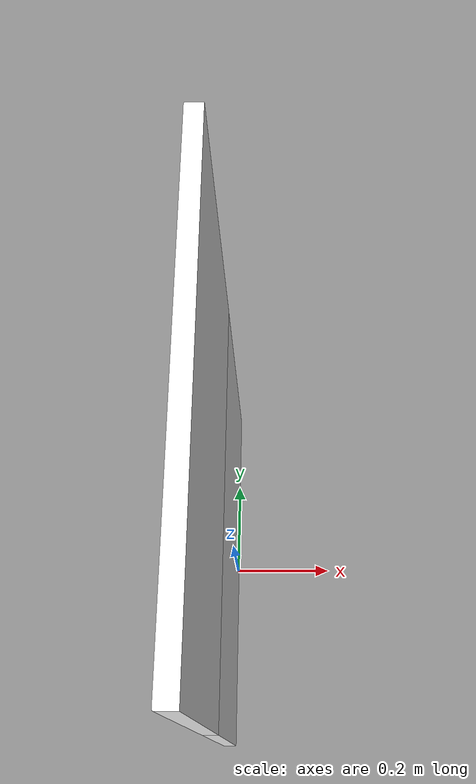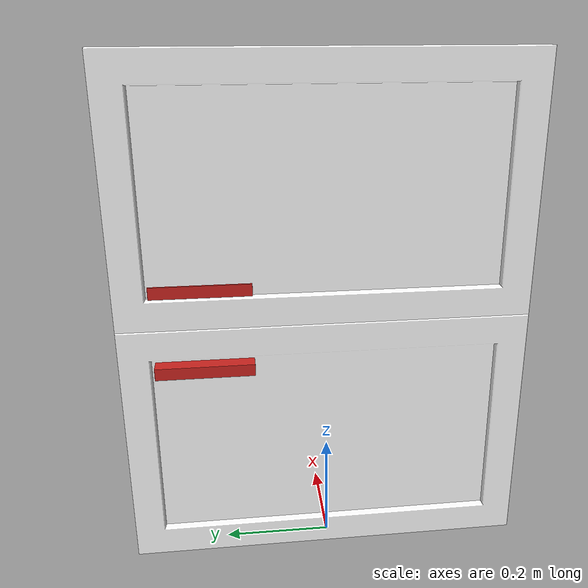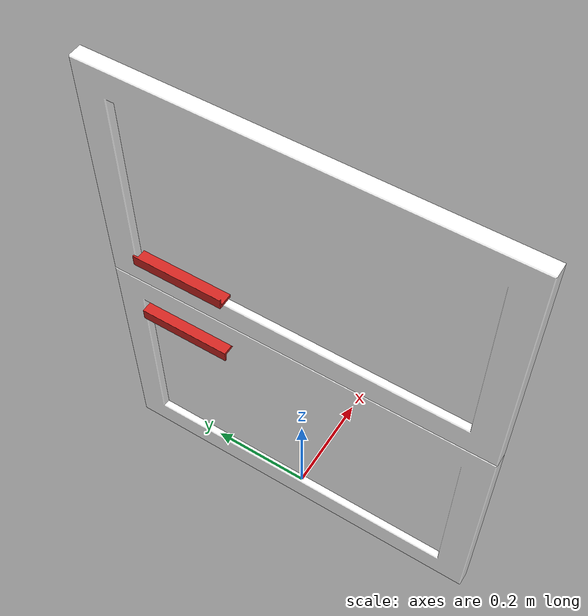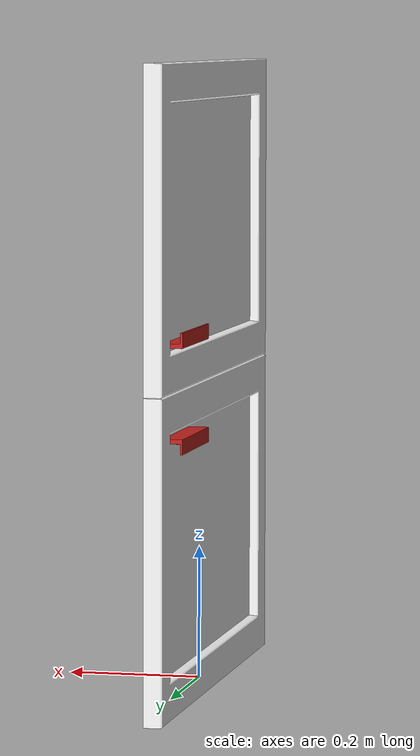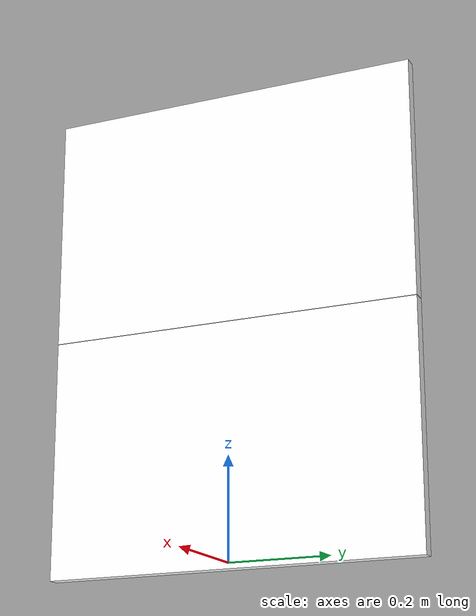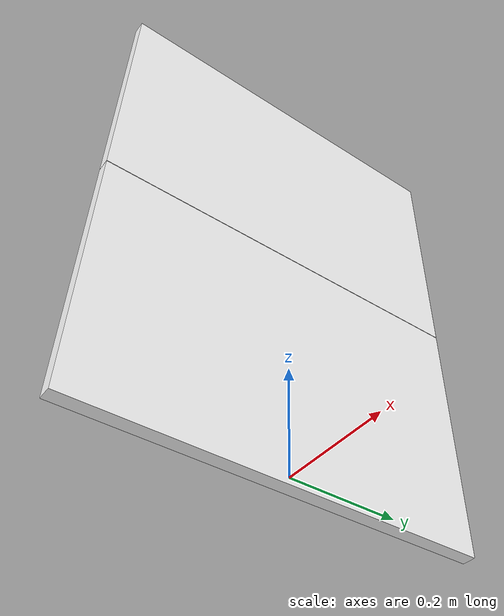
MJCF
<mujoco model="Cabinet_4223545f">
  <compiler autolimits="true" boundmass="0.01" angle="radian"/>
  <default>
    <default class="/">
      <default class="__VISUAL_MJT__">
        <geom contype="0" conaffinity="0" group="0"/>
      </default>
      <default class="__STRUCTURAL_MJT__">
        <geom contype="8" conaffinity="15" group="4" friction="0.90000000000000002 0.90000000000000002 0.001" solref="0.025000000000000001 1" solimp="0.998 0.998 0.001"/>
      </default>
      <default class="__DYNAMIC_MJT__">
        <geom contype="1" conaffinity="15" group="4" friction="0.90000000000000002 0.90000000000000002 0.001" solref="0.025000000000000001 1" solimp="0.998 0.998 0.001"/>
      </default>
    </default>
  </default>
  <asset>
    <material name="material_WhiteWoodClean" class="/" specular="0.5" shininess="0.5" rgba="1 1 1 1"/>
    <mesh name="Cabinet_4223545f_Mesh_01_1b2705d5" class="/" file="Cabinet_4223545f_Mesh_01_1b2705d5/Cabinet_4223545f_Mesh_01_1b2705d5.obj" scale="1 1 1" inertia="legacy"/>
    <texture name="HammeredMetal_AlbedoTransparency_2" type="2d" file="HammeredMetal_AlbedoTransparency.png"/>
    <material name="material_HammeredMetal_AlbedoTransparency_2" class="/" texture="HammeredMetal_AlbedoTransparency_2" specular="0.5" shininess="0.5" rgba="1 0.93407709999999999 0.81617649999999997 1"/>
    <mesh name="Cabinet_4223545f_handle_3_178mm_01_ed0a06c5" class="/" file="Cabinet_4223545f_handle_3_178mm_01_ed0a06c5/Cabinet_4223545f_handle_3_178mm_01_ed0a06c5.obj" scale="1 1 1" inertia="legacy"/>
    <mesh name="Cabinet_4223545f_Mesh_02_e5c58ddd" class="/" file="Cabinet_4223545f_Mesh_02_e5c58ddd/Cabinet_4223545f_Mesh_02_e5c58ddd.obj" scale="1 1 1" inertia="legacy"/>
    <mesh name="Cabinet_4223545f_handle_3_178mm_02_8230d528" class="/" file="Cabinet_4223545f_handle_3_178mm_02_8230d528/Cabinet_4223545f_handle_3_178mm_02_8230d528.obj" scale="1 1 1" inertia="legacy"/>
  </asset>
  <worldbody>
    <body name="Cabinet_4223545f">
      <body name="Cabinet_4223545f_Mesh_01_1b2705d5" pos="-0 0 0" quat="0.70710678118654757 0 -0.70710678118654746 0">
        <geom name="Cabinet_4223545f_Mesh_01_1b2705d5" class="__VISUAL_MJT__" type="mesh" material="material_WhiteWoodClean" mesh="Cabinet_4223545f_Mesh_01_1b2705d5"/>
        <joint name="Cabinet_4223545f_joint" class="/" type="hinge" pos="-0 0 0" axis="0 -1 0" stiffness="0" range="0 1.5707963267948966" damping="0.10000000000000001" frictionloss="0"/>
        <geom name="Cabinet_4223545f_Mesh_01_1b2705d5_PrimitiveCollider_0" class="__DYNAMIC_MJT__" type="box" size="0.23500044643878937 0.37500020861625671 0.013550045900046825" rgba="0 1 0 1" pos="0.2250000536441803 0 0.013550017960369587" quat="0 1 0 0"/>
        <body name="Cabinet_4223545f_handle_3_178mm_01_ed0a06c5" pos="0.39270013570785522 0.22200003266334534 0.0099999308586120605" quat="0.70710678118654757 0 0 0.70710678118654746">
          <geom name="Cabinet_4223545f_handle_3_178mm_01_ed0a06c5" class="__VISUAL_MJT__" type="mesh" material="material_HammeredMetal_AlbedoTransparency_2" mesh="Cabinet_4223545f_handle_3_178mm_01_ed0a06c5"/>
          <geom name="Cabinet_4223545f_handle_3_178mm_01_ed0a06c5_PrimitiveCollider_0" class="__DYNAMIC_MJT__" type="box" size="0.088752113282680511 0.0035549132153391838 0.016431534662842751" rgba="0 1 0 1" pos="3.883855015374138e-09 0 0.016290072351694107" quat="0 1 0 0"/>
          <geom name="Cabinet_4223545f_handle_3_178mm_01_ed0a06c5_PrimitiveCollider_1" class="__DYNAMIC_MJT__" type="box" size="0.088752113282680511 0.0077598174102604389 0.0019227263983339071" rgba="0 1 0 1" pos="4.652491725209984e-09 0.011284950189292431 0.03079892136156559" quat="0 1 0 0"/>
        </body>
      </body>
      <body name="Cabinet_4223545f_Mesh_02_e5c58ddd" pos="-0 0 0.93100011348724365" quat="0.70710678118654757 0 -0.70710678118654746 0">
        <geom name="Cabinet_4223545f_Mesh_02_e5c58ddd" class="__VISUAL_MJT__" type="mesh" material="material_WhiteWoodClean" mesh="Cabinet_4223545f_Mesh_02_e5c58ddd"/>
        <joint name="Cabinet_4223545f_Mesh_02_e5c58ddd__1" class="/" type="hinge" pos="-0 0 0" axis="0 -1 0" stiffness="0" range="-1.5707963267948966 0" damping="0.10000000000000001" frictionloss="0"/>
        <geom name="Cabinet_4223545f_Mesh_02_e5c58ddd_PrimitiveCollider_0" class="__DYNAMIC_MJT__" type="box" size="0.23500043153762817 0.37500020861625671 0.013550044968724251" rgba="0 1 0 1" pos="-0.23500004410743713 0 0.013550072908401489" quat="0 1 0 0"/>
        <body name="Cabinet_4223545f_handle_3_178mm_02_8230d528" pos="-0.40160006284713745 0.22200003266334534 0.010000050067901611" quat="0.70710678118654757 0 0 -0.70710678118654746">
          <geom name="Cabinet_4223545f_handle_3_178mm_02_8230d528" class="__VISUAL_MJT__" type="mesh" material="material_HammeredMetal_AlbedoTransparency_2" mesh="Cabinet_4223545f_handle_3_178mm_02_8230d528"/>
          <geom name="Cabinet_4223545f_handle_3_178mm_02_8230d528_PrimitiveCollider_0" class="__DYNAMIC_MJT__" type="box" size="0.088752113282680511 0.0035549132153391838 0.016431534662842751" rgba="0 1 0 1" pos="3.8838265936647076e-09 7.7676531873294152e-09 0.016289953142404556" quat="0 1 0 0"/>
          <geom name="Cabinet_4223545f_handle_3_178mm_02_8230d528_PrimitiveCollider_1" class="__DYNAMIC_MJT__" type="box" size="0.088752113282680511 0.0077598174102604389 0.0019227263983339071" rgba="0 1 0 1" pos="5.3495099905376264e-08 0.011284845881164074 0.030798792839050293" quat="0 1 0 0"/>
        </body>
      </body>
    </body>
  </worldbody>
  <contact>
    <exclude name="//unnamed_contact_0" body1="Cabinet_4223545f_Mesh_01_1b2705d5" body2="Cabinet_4223545f_handle_3_178mm_01_ed0a06c5"/>
    <exclude name="//unnamed_contact_1" body1="Cabinet_4223545f_Mesh_02_e5c58ddd" body2="Cabinet_4223545f_handle_3_178mm_01_ed0a06c5"/>
  </contact>
</mujoco>
